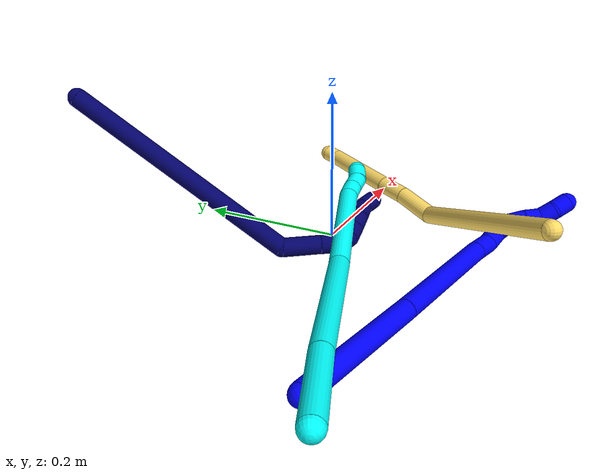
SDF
<sdf version="1.7">
 <world name="default">
  <model name="photoneo_s_sensor">
   <static>1</static>
   <pose>0 0 2 1.57079 1.57079 3.14159</pose>
   <link name="link">
    <inertial><mass>0.1</mass></inertial>
    <sensor name="sensor" type="depth">
     <update_rate>30</update_rate>
     <camera>
      <horizontal_fov>1.22</horizontal_fov>
      <image><width>1920</width><height>1200</height><format>B8G8R8</format></image>
      <clip><near>0.1</near><far>4</far></clip>
      <depth_camera><output>points</output></depth_camera>
     </camera>
     <plugin name="camera_plugin" filename="libgazebo_ros_depth_camera.so">
      <baseline>0.2</baseline>
      <alwaysOn>1</alwaysOn>
      <updateRate>0.0</updateRate>
      <cameraName>camera_ir</cameraName>
      <imageTopicName>/camera/color/image_raw</imageTopicName>
      <cameraInfoTopicName>/camera/color/camera_info</cameraInfoTopicName>
      <depthImageTopicName>/camera/depth/image_raw</depthImageTopicName>
      <depthImageCameraInfoTopicName>/camera/depth/camera_info</depthImageCameraInfoTopicName>
      <pointCloudTopicName>/camera/depth/points</pointCloudTopicName>
      <frameName>fr_optical</frameName>
      <pointCloudCutoff>0.1</pointCloudCutoff>
      <pointCloudCutoffMax>2.0</pointCloudCutoffMax>
      <distortionK1>0</distortionK1>
      <distortionK2>0</distortionK2>
      <distortionK3>0</distortionK3>
      <distortionT1>0</distortionT1>
      <distortionT2>0</distortionT2>
      <CxPrime>0</CxPrime>
      <Cx>0</Cx>
      <Cy>0</Cy>
      <focalLength>0</focalLength>
      <hackBaseline>0</hackBaseline>
     </plugin>
    </sensor>
   </link>
  </model>
  <model name="bin">
   <static>1</static>
   <link name="bottom">
    <collision name="collision-bottom">
     <pose>0 0 -0.01 0 -0 0</pose>
     <geometry><box><size>0.8 0.6 0.02</size></box></geometry>
     <surface>
      <friction><ode><mu>100</mu><mu2>100</mu2></ode></friction>
      <contact><collide_bitmask>65535</collide_bitmask></contact>
     </surface>
    </collision>
   </link>
   <link name="west_wall">
    <collision name="collision-west_wall">
     <pose>-0.41 0 0.1 0 -0 0</pose>
     <geometry><box><size>0.02 0.6 0.2</size></box></geometry>
     <surface>
      <friction><ode><mu>100</mu><mu2>100</mu2></ode></friction>
      <contact><collide_bitmask>65535</collide_bitmask></contact>
     </surface>
    </collision>
   </link>
   <link name="east_wall">
    <collision name="collision-east_wall">
     <pose>0.41 0 0.1 0 -0 0</pose>
     <geometry><box><size>0.02 0.6 0.2</size></box></geometry>
     <surface>
      <friction><ode><mu>100</mu><mu2>100</mu2></ode></friction>
      <contact><collide_bitmask>65535</collide_bitmask></contact>
     </surface>
    </collision>
   </link>
   <link name="south_wall">
    <collision name="collision-south_wall">
     <pose>0 -0.31 0.1 0 -0 0</pose>
     <geometry><box><size>0.8 0.02 0.2</size></box></geometry>
     <surface>
      <friction><ode><mu>100</mu><mu2>100</mu2></ode></friction>
      <contact><collide_bitmask>65535</collide_bitmask></contact>
     </surface>
    </collision>
   </link>
   <link name="north_wall">
    <collision name="collision-north_wall">
     <pose>0 0.31 0.1 0 -0 0</pose>
     <geometry><box><size>0.8 0.02 0.2</size></box></geometry>
     <surface>
      <friction><ode><mu>100</mu><mu2>100</mu2></ode></friction>
      <contact><collide_bitmask>65535</collide_bitmask></contact>
     </surface>
    </collision>
   </link>
  </model>
  <model name="1">
   <static>0</static>
   <link name="1">
    <collision name="collision-cylinder-e_1_1_4">
     <pose>0.058591 0.015734 -0.058097 -2.87712 0.771937 -2.50891</pose>
     <geometry><cylinder><radius>0.0125</radius><length>0.167997</length></cylinder></geometry>
     <surface>
      <friction><ode><mu>1.16</mu><mu2>1.16</mu2><slip1>0</slip1><slip2>0</slip2></ode></friction>
      <contact><ode><kp>1e+06</kp><kd>1</kd><max_vel>0</max_vel><min_depth>0.001</min_depth></ode></contact>
     </surface>
    </collision>
    <visual name="visual-cylinder-e_1_1_4">
     <pose>0.058591 0.015734 -0.058097 -2.87712 0.771937 -2.50891</pose>
     <geometry><cylinder><radius>0.0125</radius><length>0.167997</length></cylinder></geometry>
     <material><ambient>0 0 1 1</ambient></material>
    </visual>
    <collision name="collision-cylinder-e_2_4_5">
     <pose>0.180741 0.047895 -0.173407 -2.86197 0.818168 -2.51384</pose>
     <geometry><cylinder><radius>0.0125</radius><length>0.174158</length></cylinder></geometry>
     <surface>
      <friction><ode><mu>1.16</mu><mu2>1.16</mu2><slip1>0</slip1><slip2>0</slip2></ode></friction>
      <contact><ode><kp>1e+06</kp><kd>1</kd><max_vel>0</max_vel><min_depth>0.001</min_depth></ode></contact>
     </surface>
    </collision>
    <visual name="visual-cylinder-e_2_4_5">
     <pose>0.180741 0.047895 -0.173407 -2.86197 0.818168 -2.51384</pose>
     <geometry><cylinder><radius>0.0125</radius><length>0.174158</length></cylinder></geometry>
     <material><ambient>0 0 1 1</ambient></material>
    </visual>
    <collision name="collision-cylinder-e_3_5_6">
     <pose>0.256263 0.068381 -0.241979 -2.79855 0.781269 -2.34523</pose>
     <geometry><cylinder><radius>0.0125</radius><length>0.03398</length></cylinder></geometry>
     <surface>
      <friction><ode><mu>1.16</mu><mu2>1.16</mu2><slip1>0</slip1><slip2>0</slip2></ode></friction>
      <contact><ode><kp>1e+06</kp><kd>1</kd><max_vel>0</max_vel><min_depth>0.001</min_depth></ode></contact>
     </surface>
    </collision>
    <visual name="visual-cylinder-e_3_5_6">
     <pose>0.256263 0.068381 -0.241979 -2.79855 0.781269 -2.34523</pose>
     <geometry><cylinder><radius>0.0125</radius><length>0.03398</length></cylinder></geometry>
     <material><ambient>0 0 1 1</ambient></material>
    </visual>
    <collision name="collision-cylinder-e_4_6_7">
     <pose>0.273156 0.071512 -0.263373 3.0495 0.454926 2.74858</pose>
     <geometry><cylinder><radius>0.0125</radius><length>0.022435</length></cylinder></geometry>
     <surface>
      <friction><ode><mu>1.16</mu><mu2>1.16</mu2><slip1>0</slip1><slip2>0</slip2></ode></friction>
      <contact><ode><kp>1e+06</kp><kd>1</kd><max_vel>0</max_vel><min_depth>0.001</min_depth></ode></contact>
     </surface>
    </collision>
    <visual name="visual-cylinder-e_4_6_7">
     <pose>0.273156 0.071512 -0.263373 3.0495 0.454926 2.74858</pose>
     <geometry><cylinder><radius>0.0125</radius><length>0.022435</length></cylinder></geometry>
     <material><ambient>0 0 1 1</ambient></material>
    </visual>
    <collision name="collision-cylinder-e_5_7_8">
     <pose>0.277556 0.070532 -0.283701 3.13638 -0.051387 -2.93948</pose>
     <geometry><cylinder><radius>0.0125</radius><length>0.020617</length></cylinder></geometry>
     <surface>
      <friction><ode><mu>1.16</mu><mu2>1.16</mu2><slip1>0</slip1><slip2>0</slip2></ode></friction>
      <contact><ode><kp>1e+06</kp><kd>1</kd><max_vel>0</max_vel><min_depth>0.001</min_depth></ode></contact>
     </surface>
    </collision>
    <visual name="visual-cylinder-e_5_7_8">
     <pose>0.277556 0.070532 -0.283701 3.13638 -0.051387 -2.93948</pose>
     <geometry><cylinder><radius>0.0125</radius><length>0.020617</length></cylinder></geometry>
     <material><ambient>0 0 1 1</ambient></material>
    </visual>
    <collision name="collision-cylinder-e_6_8_9">
     <pose>0.276018 0.074273 -0.303468 -2.76051 -0.09849 0.500337</pose>
     <geometry><cylinder><radius>0.0125</radius><length>0.020506</length></cylinder></geometry>
     <surface>
      <friction><ode><mu>1.16</mu><mu2>1.16</mu2><slip1>0</slip1><slip2>0</slip2></ode></friction>
      <contact><ode><kp>1e+06</kp><kd>1</kd><max_vel>0</max_vel><min_depth>0.001</min_depth></ode></contact>
     </surface>
    </collision>
    <visual name="visual-cylinder-e_6_8_9">
     <pose>0.276018 0.074273 -0.303468 -2.76051 -0.09849 0.500337</pose>
     <geometry><cylinder><radius>0.0125</radius><length>0.020506</length></cylinder></geometry>
     <material><ambient>0 0 1 1</ambient></material>
    </visual>
    <collision name="collision-cylinder-e_7_9_10">
     <pose>0.273885 0.082958 -0.321637 -2.62942 -0.112232 0.42268</pose>
     <geometry><cylinder><radius>0.0125</radius><length>0.020083</length></cylinder></geometry>
     <surface>
      <friction><ode><mu>1.16</mu><mu2>1.16</mu2><slip1>0</slip1><slip2>0</slip2></ode></friction>
      <contact><ode><kp>1e+06</kp><kd>1</kd><max_vel>0</max_vel><min_depth>0.001</min_depth></ode></contact>
     </surface>
    </collision>
    <visual name="visual-cylinder-e_7_9_10">
     <pose>0.273885 0.082958 -0.321637 -2.62942 -0.112232 0.42268</pose>
     <geometry><cylinder><radius>0.0125</radius><length>0.020083</length></cylinder></geometry>
     <material><ambient>0 0 1 1</ambient></material>
    </visual>
    <collision name="collision-cylinder-e_8_10_11">
     <pose>0.271443 0.088643 -0.340262 -3.06164 -0.131517 2.04995</pose>
     <geometry><cylinder><radius>0.0125</radius><length>0.020091</length></cylinder></geometry>
     <surface>
      <friction><ode><mu>1.16</mu><mu2>1.16</mu2><slip1>0</slip1><slip2>0</slip2></ode></friction>
      <contact><ode><kp>1e+06</kp><kd>1</kd><max_vel>0</max_vel><min_depth>0.001</min_depth></ode></contact>
     </surface>
    </collision>
    <visual name="visual-cylinder-e_8_10_11">
     <pose>0.271443 0.088643 -0.340262 -3.06164 -0.131517 2.04995</pose>
     <geometry><cylinder><radius>0.0125</radius><length>0.020091</length></cylinder></geometry>
     <material><ambient>0 0 1 1</ambient></material>
    </visual>
    <collision name="collision-cylinder-e_9_11_2">
     <pose>0.271717 0.090711 -0.360047 -3.01322 0.158725 -1.78218</pose>
     <geometry><cylinder><radius>0.0125</radius><length>0.020133</length></cylinder></geometry>
     <surface>
      <friction><ode><mu>1.16</mu><mu2>1.16</mu2><slip1>0</slip1><slip2>0</slip2></ode></friction>
      <contact><ode><kp>1e+06</kp><kd>1</kd><max_vel>0</max_vel><min_depth>0.001</min_depth></ode></contact>
     </surface>
    </collision>
    <visual name="visual-cylinder-e_9_11_2">
     <pose>0.271717 0.090711 -0.360047 -3.01322 0.158725 -1.78218</pose>
     <geometry><cylinder><radius>0.0125</radius><length>0.020133</length></cylinder></geometry>
     <material><ambient>0 0 1 1</ambient></material>
    </visual>
    <collision name="collision-sphere-2">
     <pose>0.273308 0.091984 -0.369905 0 -0 0</pose>
     <geometry><sphere><radius>0.0125</radius></sphere></geometry>
     <surface>
      <friction><ode><mu>1.16</mu><mu2>1.16</mu2><slip1>0</slip1><slip2>0</slip2></ode></friction>
      <contact><ode><kp>1e+06</kp><kd>1</kd><max_vel>0</max_vel><min_depth>0.001</min_depth></ode></contact>
     </surface>
    </collision>
    <visual name="visual-sphere-2">
     <pose>0.273308 0.091984 -0.369905 0 -0 0</pose>
     <geometry><sphere><radius>0.0125</radius></sphere></geometry>
     <material><ambient>0 0 1 1</ambient></material>
    </visual>
    <collision name="collision-sphere-11">
     <pose>0.270126 0.089439 -0.350188 0 -0 0</pose>
     <geometry><sphere><radius>0.0125</radius></sphere></geometry>
     <surface>
      <friction><ode><mu>1.16</mu><mu2>1.16</mu2><slip1>0</slip1><slip2>0</slip2></ode></friction>
      <contact><ode><kp>1e+06</kp><kd>1</kd><max_vel>0</max_vel><min_depth>0.001</min_depth></ode></contact>
     </surface>
    </collision>
    <visual name="visual-sphere-11">
     <pose>0.270126 0.089439 -0.350188 0 -0 0</pose>
     <geometry><sphere><radius>0.0125</radius></sphere></geometry>
     <material><ambient>0 0 1 1</ambient></material>
    </visual>
    <collision name="collision-sphere-10">
     <pose>0.27276 0.087848 -0.330335 0 -0 0</pose>
     <geometry><sphere><radius>0.0125</radius></sphere></geometry>
     <surface>
      <friction><ode><mu>1.16</mu><mu2>1.16</mu2><slip1>0</slip1><slip2>0</slip2></ode></friction>
      <contact><ode><kp>1e+06</kp><kd>1</kd><max_vel>0</max_vel><min_depth>0.001</min_depth></ode></contact>
     </surface>
    </collision>
    <visual name="visual-sphere-10">
     <pose>0.27276 0.087848 -0.330335 0 -0 0</pose>
     <geometry><sphere><radius>0.0125</radius></sphere></geometry>
     <material><ambient>0 0 1 1</ambient></material>
    </visual>
    <collision name="collision-sphere-9">
     <pose>0.27501 0.078068 -0.312939 0 -0 0</pose>
     <geometry><sphere><radius>0.0125</radius></sphere></geometry>
     <surface>
      <friction><ode><mu>1.16</mu><mu2>1.16</mu2><slip1>0</slip1><slip2>0</slip2></ode></friction>
      <contact><ode><kp>1e+06</kp><kd>1</kd><max_vel>0</max_vel><min_depth>0.001</min_depth></ode></contact>
     </surface>
    </collision>
    <visual name="visual-sphere-9">
     <pose>0.27501 0.078068 -0.312939 0 -0 0</pose>
     <geometry><sphere><radius>0.0125</radius></sphere></geometry>
     <material><ambient>0 0 1 1</ambient></material>
    </visual>
    <collision name="collision-sphere-4">
     <pose>0.117182 0.031467 -0.116195 0 -0 0</pose>
     <geometry><sphere><radius>0.0125</radius></sphere></geometry>
     <surface>
      <friction><ode><mu>1.16</mu><mu2>1.16</mu2><slip1>0</slip1><slip2>0</slip2></ode></friction>
      <contact><ode><kp>1e+06</kp><kd>1</kd><max_vel>0</max_vel><min_depth>0.001</min_depth></ode></contact>
     </surface>
    </collision>
    <visual name="visual-sphere-4">
     <pose>0.117182 0.031467 -0.116195 0 -0 0</pose>
     <geometry><sphere><radius>0.0125</radius></sphere></geometry>
     <material><ambient>0 0 1 1</ambient></material>
    </visual>
    <collision name="collision-sphere-1">
     <geometry><sphere><radius>0.0125</radius></sphere></geometry>
     <surface>
      <friction><ode><mu>1.16</mu><mu2>1.16</mu2><slip1>0</slip1><slip2>0</slip2></ode></friction>
      <contact><ode><kp>1e+06</kp><kd>1</kd><max_vel>0</max_vel><min_depth>0.001</min_depth></ode></contact>
     </surface>
    </collision>
    <visual name="visual-sphere-1">
     <geometry><sphere><radius>0.0125</radius></sphere></geometry>
     <material><ambient>0 0 1 1</ambient></material>
    </visual>
    <collision name="collision-sphere-8">
     <pose>0.277026 0.070478 -0.293996 0 -0 0</pose>
     <geometry><sphere><radius>0.0125</radius></sphere></geometry>
     <surface>
      <friction><ode><mu>1.16</mu><mu2>1.16</mu2><slip1>0</slip1><slip2>0</slip2></ode></friction>
      <contact><ode><kp>1e+06</kp><kd>1</kd><max_vel>0</max_vel><min_depth>0.001</min_depth></ode></contact>
     </surface>
    </collision>
    <visual name="visual-sphere-8">
     <pose>0.277026 0.070478 -0.293996 0 -0 0</pose>
     <geometry><sphere><radius>0.0125</radius></sphere></geometry>
     <material><ambient>0 0 1 1</ambient></material>
    </visual>
    <collision name="collision-sphere-5">
     <pose>0.244299 0.064324 -0.230618 0 -0 0</pose>
     <geometry><sphere><radius>0.0125</radius></sphere></geometry>
     <surface>
      <friction><ode><mu>1.16</mu><mu2>1.16</mu2><slip1>0</slip1><slip2>0</slip2></ode></friction>
      <contact><ode><kp>1e+06</kp><kd>1</kd><max_vel>0</max_vel><min_depth>0.001</min_depth></ode></contact>
     </surface>
    </collision>
    <visual name="visual-sphere-5">
     <pose>0.244299 0.064324 -0.230618 0 -0 0</pose>
     <geometry><sphere><radius>0.0125</radius></sphere></geometry>
     <material><ambient>0 0 1 1</ambient></material>
    </visual>
    <collision name="collision-sphere-6">
     <pose>0.268227 0.072439 -0.253339 0 -0 0</pose>
     <geometry><sphere><radius>0.0125</radius></sphere></geometry>
     <surface>
      <friction><ode><mu>1.16</mu><mu2>1.16</mu2><slip1>0</slip1><slip2>0</slip2></ode></friction>
      <contact><ode><kp>1e+06</kp><kd>1</kd><max_vel>0</max_vel><min_depth>0.001</min_depth></ode></contact>
     </surface>
    </collision>
    <visual name="visual-sphere-6">
     <pose>0.268227 0.072439 -0.253339 0 -0 0</pose>
     <geometry><sphere><radius>0.0125</radius></sphere></geometry>
     <material><ambient>0 0 1 1</ambient></material>
    </visual>
    <collision name="collision-sphere-7">
     <pose>0.278085 0.070585 -0.273407 0 -0 0</pose>
     <geometry><sphere><radius>0.0125</radius></sphere></geometry>
     <surface>
      <friction><ode><mu>1.16</mu><mu2>1.16</mu2><slip1>0</slip1><slip2>0</slip2></ode></friction>
      <contact><ode><kp>1e+06</kp><kd>1</kd><max_vel>0</max_vel><min_depth>0.001</min_depth></ode></contact>
     </surface>
    </collision>
    <visual name="visual-sphere-7">
     <pose>0.278085 0.070585 -0.273407 0 -0 0</pose>
     <geometry><sphere><radius>0.0125</radius></sphere></geometry>
     <material><ambient>0 0 1 1</ambient></material>
    </visual>
    <inertial>
     <pose>0.167927 0.046326 -0.173416 0 -0 0</pose>
     <mass>0.5</mass>
     <inertia>
      <ixx>-0.000812</ixx>
      <ixy>0</ixy>
      <ixz>0</ixz>
      <iyy>0.000419</iyy>
      <iyz>0</iyz>
      <izz>-0.000801</izz>
     </inertia>
    </inertial>
   </link>
   <pose>-0.320886 -0.125487 0.011495 -2.18358 0.311789 0.509385</pose>
  </model>
  <model name="3">
   <static>0</static>
   <link name="3">
    <collision name="collision-cylinder-e_1_1_4">
     <pose>0.0008 -0.000142 -0.047157 3.13858 0.016962 2.79062</pose>
     <geometry><cylinder><radius>0.0125</radius><length>0.094327</length></cylinder></geometry>
     <surface>
      <friction><ode><mu>1.16</mu><mu2>1.16</mu2><slip1>0</slip1><slip2>0</slip2></ode></friction>
      <contact><ode><kp>1e+06</kp><kd>1</kd><max_vel>0</max_vel><min_depth>0.001</min_depth></ode></contact>
     </surface>
    </collision>
    <visual name="visual-cylinder-e_1_1_4">
     <pose>0.0008 -0.000142 -0.047157 3.13858 0.016962 2.79062</pose>
     <geometry><cylinder><radius>0.0125</radius><length>0.094327</length></cylinder></geometry>
     <material><ambient>0.003922 1 0.996078 1</ambient></material>
    </visual>
    <collision name="collision-cylinder-e_2_4_5">
     <pose>0.007812 -0.002548 -0.186418 3.11701 0.067324 2.44171</pose>
     <geometry><cylinder><radius>0.0125</radius><length>0.184684</length></cylinder></geometry>
     <surface>
      <friction><ode><mu>1.16</mu><mu2>1.16</mu2><slip1>0</slip1><slip2>0</slip2></ode></friction>
      <contact><ode><kp>1e+06</kp><kd>1</kd><max_vel>0</max_vel><min_depth>0.001</min_depth></ode></contact>
     </surface>
    </collision>
    <visual name="visual-cylinder-e_2_4_5">
     <pose>0.007812 -0.002548 -0.186418 3.11701 0.067324 2.44171</pose>
     <geometry><cylinder><radius>0.0125</radius><length>0.184684</length></cylinder></geometry>
     <material><ambient>0.003922 1 0.996078 1</ambient></material>
    </visual>
    <collision name="collision-cylinder-e_3_5_6">
     <pose>0.012453 0.007952 -0.356887 -2.98013 -0.019787 0.243368</pose>
     <geometry><cylinder><radius>0.0125</radius><length>0.158824</length></cylinder></geometry>
     <surface>
      <friction><ode><mu>1.16</mu><mu2>1.16</mu2><slip1>0</slip1><slip2>0</slip2></ode></friction>
      <contact><ode><kp>1e+06</kp><kd>1</kd><max_vel>0</max_vel><min_depth>0.001</min_depth></ode></contact>
     </surface>
    </collision>
    <visual name="visual-cylinder-e_3_5_6">
     <pose>0.012453 0.007952 -0.356887 -2.98013 -0.019787 0.243368</pose>
     <geometry><cylinder><radius>0.0125</radius><length>0.158824</length></cylinder></geometry>
     <material><ambient>0.003922 1 0.996078 1</ambient></material>
    </visual>
    <collision name="collision-cylinder-e_4_6_7">
     <pose>0.012366 0.024098 -0.445477 -2.82217 0.136889 -0.804699</pose>
     <geometry><cylinder><radius>0.0125</radius><length>0.021746</length></cylinder></geometry>
     <surface>
      <friction><ode><mu>1.16</mu><mu2>1.16</mu2><slip1>0</slip1><slip2>0</slip2></ode></friction>
      <contact><ode><kp>1e+06</kp><kd>1</kd><max_vel>0</max_vel><min_depth>0.001</min_depth></ode></contact>
     </surface>
    </collision>
    <visual name="visual-cylinder-e_4_6_7">
     <pose>0.012366 0.024098 -0.445477 -2.82217 0.136889 -0.804699</pose>
     <geometry><cylinder><radius>0.0125</radius><length>0.021746</length></cylinder></geometry>
     <material><ambient>0.003922 1 0.996078 1</ambient></material>
    </visual>
    <collision name="collision-cylinder-e_5_7_8">
     <pose>0.015818 0.031242 -0.464949 -2.7552 0.194783 -0.926327</pose>
     <geometry><cylinder><radius>0.0125</radius><length>0.020347</length></cylinder></geometry>
     <surface>
      <friction><ode><mu>1.16</mu><mu2>1.16</mu2><slip1>0</slip1><slip2>0</slip2></ode></friction>
      <contact><ode><kp>1e+06</kp><kd>1</kd><max_vel>0</max_vel><min_depth>0.001</min_depth></ode></contact>
     </surface>
    </collision>
    <visual name="visual-cylinder-e_5_7_8">
     <pose>0.015818 0.031242 -0.464949 -2.7552 0.194783 -0.926327</pose>
     <geometry><cylinder><radius>0.0125</radius><length>0.020347</length></cylinder></geometry>
     <material><ambient>0.003922 1 0.996078 1</ambient></material>
    </visual>
    <collision name="collision-cylinder-e_6_8_2">
     <pose>0.015756 0.03813 -0.483511 -2.81775 -0.203815 1.11867</pose>
     <geometry><cylinder><radius>0.0125</radius><length>0.020072</length></cylinder></geometry>
     <surface>
      <friction><ode><mu>1.16</mu><mu2>1.16</mu2><slip1>0</slip1><slip2>0</slip2></ode></friction>
      <contact><ode><kp>1e+06</kp><kd>1</kd><max_vel>0</max_vel><min_depth>0.001</min_depth></ode></contact>
     </surface>
    </collision>
    <visual name="visual-cylinder-e_6_8_2">
     <pose>0.015756 0.03813 -0.483511 -2.81775 -0.203815 1.11867</pose>
     <geometry><cylinder><radius>0.0125</radius><length>0.020072</length></cylinder></geometry>
     <material><ambient>0.003922 1 0.996078 1</ambient></material>
    </visual>
    <collision name="collision-sphere-2">
     <pose>0.013725 0.041258 -0.492829 0 -0 0</pose>
     <geometry><sphere><radius>0.0125</radius></sphere></geometry>
     <surface>
      <friction><ode><mu>1.16</mu><mu2>1.16</mu2><slip1>0</slip1><slip2>0</slip2></ode></friction>
      <contact><ode><kp>1e+06</kp><kd>1</kd><max_vel>0</max_vel><min_depth>0.001</min_depth></ode></contact>
     </surface>
    </collision>
    <visual name="visual-sphere-2">
     <pose>0.013725 0.041258 -0.492829 0 -0 0</pose>
     <geometry><sphere><radius>0.0125</radius></sphere></geometry>
     <material><ambient>0.003922 1 0.996078 1</ambient></material>
    </visual>
    <collision name="collision-sphere-4">
     <pose>0.0016 -0.000284 -0.094313 0 -0 0</pose>
     <geometry><sphere><radius>0.0125</radius></sphere></geometry>
     <surface>
      <friction><ode><mu>1.16</mu><mu2>1.16</mu2><slip1>0</slip1><slip2>0</slip2></ode></friction>
      <contact><ode><kp>1e+06</kp><kd>1</kd><max_vel>0</max_vel><min_depth>0.001</min_depth></ode></contact>
     </surface>
    </collision>
    <visual name="visual-sphere-4">
     <pose>0.0016 -0.000284 -0.094313 0 -0 0</pose>
     <geometry><sphere><radius>0.0125</radius></sphere></geometry>
     <material><ambient>0.003922 1 0.996078 1</ambient></material>
    </visual>
    <collision name="collision-sphere-1">
     <geometry><sphere><radius>0.0125</radius></sphere></geometry>
     <surface>
      <friction><ode><mu>1.16</mu><mu2>1.16</mu2><slip1>0</slip1><slip2>0</slip2></ode></friction>
      <contact><ode><kp>1e+06</kp><kd>1</kd><max_vel>0</max_vel><min_depth>0.001</min_depth></ode></contact>
     </surface>
    </collision>
    <visual name="visual-sphere-1">
     <geometry><sphere><radius>0.0125</radius></sphere></geometry>
     <material><ambient>0.003922 1 0.996078 1</ambient></material>
    </visual>
    <collision name="collision-sphere-8">
     <pose>0.017788 0.035003 -0.474194 0 -0 0</pose>
     <geometry><sphere><radius>0.0125</radius></sphere></geometry>
     <surface>
      <friction><ode><mu>1.16</mu><mu2>1.16</mu2><slip1>0</slip1><slip2>0</slip2></ode></friction>
      <contact><ode><kp>1e+06</kp><kd>1</kd><max_vel>0</max_vel><min_depth>0.001</min_depth></ode></contact>
     </surface>
    </collision>
    <visual name="visual-sphere-8">
     <pose>0.017788 0.035003 -0.474194 0 -0 0</pose>
     <geometry><sphere><radius>0.0125</radius></sphere></geometry>
     <material><ambient>0.003922 1 0.996078 1</ambient></material>
    </visual>
    <collision name="collision-sphere-5">
     <pose>0.014024 -0.004812 -0.278523 0 -0 0</pose>
     <geometry><sphere><radius>0.0125</radius></sphere></geometry>
     <surface>
      <friction><ode><mu>1.16</mu><mu2>1.16</mu2><slip1>0</slip1><slip2>0</slip2></ode></friction>
      <contact><ode><kp>1e+06</kp><kd>1</kd><max_vel>0</max_vel><min_depth>0.001</min_depth></ode></contact>
     </surface>
    </collision>
    <visual name="visual-sphere-5">
     <pose>0.014024 -0.004812 -0.278523 0 -0 0</pose>
     <geometry><sphere><radius>0.0125</radius></sphere></geometry>
     <material><ambient>0.003922 1 0.996078 1</ambient></material>
    </visual>
    <collision name="collision-sphere-6">
     <pose>0.010882 0.020715 -0.43525 0 -0 0</pose>
     <geometry><sphere><radius>0.0125</radius></sphere></geometry>
     <surface>
      <friction><ode><mu>1.16</mu><mu2>1.16</mu2><slip1>0</slip1><slip2>0</slip2></ode></friction>
      <contact><ode><kp>1e+06</kp><kd>1</kd><max_vel>0</max_vel><min_depth>0.001</min_depth></ode></contact>
     </surface>
    </collision>
    <visual name="visual-sphere-6">
     <pose>0.010882 0.020715 -0.43525 0 -0 0</pose>
     <geometry><sphere><radius>0.0125</radius></sphere></geometry>
     <material><ambient>0.003922 1 0.996078 1</ambient></material>
    </visual>
    <collision name="collision-sphere-7">
     <pose>0.013849 0.02748 -0.455704 0 -0 0</pose>
     <geometry><sphere><radius>0.0125</radius></sphere></geometry>
     <surface>
      <friction><ode><mu>1.16</mu><mu2>1.16</mu2><slip1>0</slip1><slip2>0</slip2></ode></friction>
      <contact><ode><kp>1e+06</kp><kd>1</kd><max_vel>0</max_vel><min_depth>0.001</min_depth></ode></contact>
     </surface>
    </collision>
    <visual name="visual-sphere-7">
     <pose>0.013849 0.02748 -0.455704 0 -0 0</pose>
     <geometry><sphere><radius>0.0125</radius></sphere></geometry>
     <material><ambient>0.003922 1 0.996078 1</ambient></material>
    </visual>
    <inertial>
     <pose>0.008806 0.005408 -0.248823 0 -0 0</pose>
     <mass>0.5</mass>
     <inertia>
      <ixx>0.000307</ixx>
      <ixy>0</ixy>
      <ixz>0</ixz>
      <iyy>0.0006</iyy>
      <iyz>0</iyz>
      <izz>-0.000112</izz>
     </inertia>
    </inertial>
   </link>
   <pose>-0.376922 -0.165225 0.037869 1.56403 0.411958 -1.16963</pose>
  </model>
  <model name="5">
   <static>0</static>
   <link name="5">
    <collision name="collision-cylinder-e_1_1_4">
     <pose>0.0814 0.094495 -0.006149 -1.63578 0.710042 -0.753482</pose>
     <geometry><cylinder><radius>0.0125</radius><length>0.249745</length></cylinder></geometry>
     <surface>
      <friction><ode><mu>1.16</mu><mu2>1.16</mu2><slip1>0</slip1><slip2>0</slip2></ode></friction>
      <contact><ode><kp>1e+06</kp><kd>1</kd><max_vel>0</max_vel><min_depth>0.001</min_depth></ode></contact>
     </surface>
    </collision>
    <visual name="visual-cylinder-e_1_1_4">
     <pose>0.0814 0.094495 -0.006149 -1.63578 0.710042 -0.753482</pose>
     <geometry><cylinder><radius>0.0125</radius><length>0.249745</length></cylinder></geometry>
     <material><ambient>1 0.858824 0.4 1</ambient></material>
    </visual>
    <collision name="collision-cylinder-e_2_4_5">
     <pose>0.167227 0.21587 -0.021285 -1.89344 0.154929 -0.214758</pose>
     <geometry><cylinder><radius>0.0125</radius><length>0.05737</length></cylinder></geometry>
     <surface>
      <friction><ode><mu>1.16</mu><mu2>1.16</mu2><slip1>0</slip1><slip2>0</slip2></ode></friction>
      <contact><ode><kp>1e+06</kp><kd>1</kd><max_vel>0</max_vel><min_depth>0.001</min_depth></ode></contact>
     </surface>
    </collision>
    <visual name="visual-cylinder-e_2_4_5">
     <pose>0.167227 0.21587 -0.021285 -1.89344 0.154929 -0.214758</pose>
     <geometry><cylinder><radius>0.0125</radius><length>0.05737</length></cylinder></geometry>
     <material><ambient>1 0.858824 0.4 1</ambient></material>
    </visual>
    <collision name="collision-cylinder-e_3_5_6">
     <pose>0.177014 0.261566 -0.037393 -1.93258 0.260412 -0.374685</pose>
     <geometry><cylinder><radius>0.0125</radius><length>0.041644</length></cylinder></geometry>
     <surface>
      <friction><ode><mu>1.16</mu><mu2>1.16</mu2><slip1>0</slip1><slip2>0</slip2></ode></friction>
      <contact><ode><kp>1e+06</kp><kd>1</kd><max_vel>0</max_vel><min_depth>0.001</min_depth></ode></contact>
     </surface>
    </collision>
    <visual name="visual-cylinder-e_3_5_6">
     <pose>0.177014 0.261566 -0.037393 -1.93258 0.260412 -0.374685</pose>
     <geometry><cylinder><radius>0.0125</radius><length>0.041644</length></cylinder></geometry>
     <material><ambient>1 0.858824 0.4 1</ambient></material>
    </visual>
    <collision name="collision-cylinder-e_4_6_7">
     <pose>0.20259 0.340218 -0.060521 -1.8322 0.315468 -0.408618</pose>
     <geometry><cylinder><radius>0.0125</radius><length>0.130307</length></cylinder></geometry>
     <surface>
      <friction><ode><mu>1.16</mu><mu2>1.16</mu2><slip1>0</slip1><slip2>0</slip2></ode></friction>
      <contact><ode><kp>1e+06</kp><kd>1</kd><max_vel>0</max_vel><min_depth>0.001</min_depth></ode></contact>
     </surface>
    </collision>
    <visual name="visual-cylinder-e_4_6_7">
     <pose>0.20259 0.340218 -0.060521 -1.8322 0.315468 -0.408618</pose>
     <geometry><cylinder><radius>0.0125</radius><length>0.130307</length></cylinder></geometry>
     <material><ambient>1 0.858824 0.4 1</ambient></material>
    </visual>
    <collision name="collision-cylinder-e_5_7_2">
     <pose>0.224869 0.409179 -0.081219 -2.0455 0.198523 -0.323446</pose>
     <geometry><cylinder><radius>0.0125</radius><length>0.020933</length></cylinder></geometry>
     <surface>
      <friction><ode><mu>1.16</mu><mu2>1.16</mu2><slip1>0</slip1><slip2>0</slip2></ode></friction>
      <contact><ode><kp>1e+06</kp><kd>1</kd><max_vel>0</max_vel><min_depth>0.001</min_depth></ode></contact>
     </surface>
    </collision>
    <visual name="visual-cylinder-e_5_7_2">
     <pose>0.224869 0.409179 -0.081219 -2.0455 0.198523 -0.323446</pose>
     <geometry><cylinder><radius>0.0125</radius><length>0.020933</length></cylinder></geometry>
     <material><ambient>1 0.858824 0.4 1</ambient></material>
    </visual>
    <collision name="collision-sphere-2">
     <pose>0.226933 0.418305 -0.085909 0 -0 0</pose>
     <geometry><sphere><radius>0.0125</radius></sphere></geometry>
     <surface>
      <friction><ode><mu>1.16</mu><mu2>1.16</mu2><slip1>0</slip1><slip2>0</slip2></ode></friction>
      <contact><ode><kp>1e+06</kp><kd>1</kd><max_vel>0</max_vel><min_depth>0.001</min_depth></ode></contact>
     </surface>
    </collision>
    <visual name="visual-sphere-2">
     <pose>0.226933 0.418305 -0.085909 0 -0 0</pose>
     <geometry><sphere><radius>0.0125</radius></sphere></geometry>
     <material><ambient>1 0.858824 0.4 1</ambient></material>
    </visual>
    <collision name="collision-sphere-7">
     <pose>0.222805 0.400052 -0.076529 0 -0 0</pose>
     <geometry><sphere><radius>0.0125</radius></sphere></geometry>
     <surface>
      <friction><ode><mu>1.16</mu><mu2>1.16</mu2><slip1>0</slip1><slip2>0</slip2></ode></friction>
      <contact><ode><kp>1e+06</kp><kd>1</kd><max_vel>0</max_vel><min_depth>0.001</min_depth></ode></contact>
     </surface>
    </collision>
    <visual name="visual-sphere-7">
     <pose>0.222805 0.400052 -0.076529 0 -0 0</pose>
     <geometry><sphere><radius>0.0125</radius></sphere></geometry>
     <material><ambient>1 0.858824 0.4 1</ambient></material>
    </visual>
    <collision name="collision-sphere-6">
     <pose>0.182376 0.280384 -0.044514 0 -0 0</pose>
     <geometry><sphere><radius>0.0125</radius></sphere></geometry>
     <surface>
      <friction><ode><mu>1.16</mu><mu2>1.16</mu2><slip1>0</slip1><slip2>0</slip2></ode></friction>
      <contact><ode><kp>1e+06</kp><kd>1</kd><max_vel>0</max_vel><min_depth>0.001</min_depth></ode></contact>
     </surface>
    </collision>
    <visual name="visual-sphere-6">
     <pose>0.182376 0.280384 -0.044514 0 -0 0</pose>
     <geometry><sphere><radius>0.0125</radius></sphere></geometry>
     <material><ambient>1 0.858824 0.4 1</ambient></material>
    </visual>
    <collision name="collision-sphere-5">
     <pose>0.171653 0.242748 -0.030271 0 -0 0</pose>
     <geometry><sphere><radius>0.0125</radius></sphere></geometry>
     <surface>
      <friction><ode><mu>1.16</mu><mu2>1.16</mu2><slip1>0</slip1><slip2>0</slip2></ode></friction>
      <contact><ode><kp>1e+06</kp><kd>1</kd><max_vel>0</max_vel><min_depth>0.001</min_depth></ode></contact>
     </surface>
    </collision>
    <visual name="visual-sphere-5">
     <pose>0.171653 0.242748 -0.030271 0 -0 0</pose>
     <geometry><sphere><radius>0.0125</radius></sphere></geometry>
     <material><ambient>1 0.858824 0.4 1</ambient></material>
    </visual>
    <collision name="collision-sphere-1">
     <geometry><sphere><radius>0.0125</radius></sphere></geometry>
     <surface>
      <friction><ode><mu>1.16</mu><mu2>1.16</mu2><slip1>0</slip1><slip2>0</slip2></ode></friction>
      <contact><ode><kp>1e+06</kp><kd>1</kd><max_vel>0</max_vel><min_depth>0.001</min_depth></ode></contact>
     </surface>
    </collision>
    <visual name="visual-sphere-1">
     <geometry><sphere><radius>0.0125</radius></sphere></geometry>
     <material><ambient>1 0.858824 0.4 1</ambient></material>
    </visual>
    <collision name="collision-sphere-4">
     <pose>0.1628 0.188991 -0.012299 0 -0 0</pose>
     <geometry><sphere><radius>0.0125</radius></sphere></geometry>
     <surface>
      <friction><ode><mu>1.16</mu><mu2>1.16</mu2><slip1>0</slip1><slip2>0</slip2></ode></friction>
      <contact><ode><kp>1e+06</kp><kd>1</kd><max_vel>0</max_vel><min_depth>0.001</min_depth></ode></contact>
     </surface>
    </collision>
    <visual name="visual-sphere-4">
     <pose>0.1628 0.188991 -0.012299 0 -0 0</pose>
     <geometry><sphere><radius>0.0125</radius></sphere></geometry>
     <material><ambient>1 0.858824 0.4 1</ambient></material>
    </visual>
    <inertial>
     <pose>0.136802 0.199551 -0.027801 0 -0 0</pose>
     <mass>0.5</mass>
     <inertia>
      <ixx>0.000175</ixx>
      <ixy>0</ixy>
      <ixz>0</ixz>
      <iyy>-0.000234</iyy>
      <iyz>0</iyz>
      <izz>-0.002112</izz>
     </inertia>
    </inertial>
   </link>
   <pose>-0.054754 -0.286814 0.090168 1.64135 1.18122 0.854657</pose>
  </model>
  <model name="7">
   <static>0</static>
   <link name="7">
    <collision name="collision-cylinder-e_1_1_4">
     <pose>0.038952 -0.153994 0.021067 1.43484 0.245553 0.214504</pose>
     <geometry><cylinder><radius>0.0125</radius><length>0.32047</length></cylinder></geometry>
     <surface>
      <friction><ode><mu>1.16</mu><mu2>1.16</mu2><slip1>0</slip1><slip2>0</slip2></ode></friction>
      <contact><ode><kp>1e+06</kp><kd>1</kd><max_vel>0</max_vel><min_depth>0.001</min_depth></ode></contact>
     </surface>
    </collision>
    <visual name="visual-cylinder-e_1_1_4">
     <pose>0.038952 -0.153994 0.021067 1.43484 0.245553 0.214504</pose>
     <geometry><cylinder><radius>0.0125</radius><length>0.32047</length></cylinder></geometry>
     <material><ambient>0.003922 0 0.403922 1</ambient></material>
    </visual>
    <collision name="collision-cylinder-e_2_4_5">
     <pose>0.066798 -0.330846 0.041227 1.61049 -0.451969 -0.46962</pose>
     <geometry><cylinder><radius>0.0125</radius><length>0.050859</length></cylinder></geometry>
     <surface>
      <friction><ode><mu>1.16</mu><mu2>1.16</mu2><slip1>0</slip1><slip2>0</slip2></ode></friction>
      <contact><ode><kp>1e+06</kp><kd>1</kd><max_vel>0</max_vel><min_depth>0.001</min_depth></ode></contact>
     </surface>
    </collision>
    <visual name="visual-cylinder-e_2_4_5">
     <pose>0.066798 -0.330846 0.041227 1.61049 -0.451969 -0.46962</pose>
     <geometry><cylinder><radius>0.0125</radius><length>0.050859</length></cylinder></geometry>
     <material><ambient>0.003922 0 0.403922 1</ambient></material>
    </visual>
    <collision name="collision-cylinder-e_3_5_6">
     <pose>0.0506 -0.36533 0.039059 1.67876 -0.410652 -0.456036</pose>
     <geometry><cylinder><radius>0.0125</radius><length>0.025509</length></cylinder></geometry>
     <surface>
      <friction><ode><mu>1.16</mu><mu2>1.16</mu2><slip1>0</slip1><slip2>0</slip2></ode></friction>
      <contact><ode><kp>1e+06</kp><kd>1</kd><max_vel>0</max_vel><min_depth>0.001</min_depth></ode></contact>
     </surface>
    </collision>
    <visual name="visual-cylinder-e_3_5_6">
     <pose>0.0506 -0.36533 0.039059 1.67876 -0.410652 -0.456036</pose>
     <geometry><cylinder><radius>0.0125</radius><length>0.025509</length></cylinder></geometry>
     <material><ambient>0.003922 0 0.403922 1</ambient></material>
    </visual>
    <collision name="collision-cylinder-e_4_6_7">
     <pose>0.03726 -0.382503 0.04182 0.943543 -0.877687 -0.470088</pose>
     <geometry><cylinder><radius>0.0125</radius><length>0.021444</length></cylinder></geometry>
     <surface>
      <friction><ode><mu>1.16</mu><mu2>1.16</mu2><slip1>0</slip1><slip2>0</slip2></ode></friction>
      <contact><ode><kp>1e+06</kp><kd>1</kd><max_vel>0</max_vel><min_depth>0.001</min_depth></ode></contact>
     </surface>
    </collision>
    <visual name="visual-cylinder-e_4_6_7">
     <pose>0.03726 -0.382503 0.04182 0.943543 -0.877687 -0.470088</pose>
     <geometry><cylinder><radius>0.0125</radius><length>0.021444</length></cylinder></geometry>
     <material><ambient>0.003922 0 0.403922 1</ambient></material>
    </visual>
    <collision name="collision-cylinder-e_5_7_8">
     <pose>0.01873 -0.389436 0.048258 0.520787 -1.30608 -0.402154</pose>
     <geometry><cylinder><radius>0.0125</radius><length>0.021307</length></cylinder></geometry>
     <surface>
      <friction><ode><mu>1.16</mu><mu2>1.16</mu2><slip1>0</slip1><slip2>0</slip2></ode></friction>
      <contact><ode><kp>1e+06</kp><kd>1</kd><max_vel>0</max_vel><min_depth>0.001</min_depth></ode></contact>
     </surface>
    </collision>
    <visual name="visual-cylinder-e_5_7_8">
     <pose>0.01873 -0.389436 0.048258 0.520787 -1.30608 -0.402154</pose>
     <geometry><cylinder><radius>0.0125</radius><length>0.021307</length></cylinder></geometry>
     <material><ambient>0.003922 0 0.403922 1</ambient></material>
    </visual>
    <collision name="collision-cylinder-e_6_8_9">
     <pose>-0.00158 -0.391875 0.05179 0.756619 -1.41916 -0.657865</pose>
     <geometry><cylinder><radius>0.0125</radius><length>0.020288</length></cylinder></geometry>
     <surface>
      <friction><ode><mu>1.16</mu><mu2>1.16</mu2><slip1>0</slip1><slip2>0</slip2></ode></friction>
      <contact><ode><kp>1e+06</kp><kd>1</kd><max_vel>0</max_vel><min_depth>0.001</min_depth></ode></contact>
     </surface>
    </collision>
    <visual name="visual-cylinder-e_6_8_9">
     <pose>-0.00158 -0.391875 0.05179 0.756619 -1.41916 -0.657865</pose>
     <geometry><cylinder><radius>0.0125</radius><length>0.020288</length></cylinder></geometry>
     <material><ambient>0.003922 0 0.403922 1</ambient></material>
    </visual>
    <collision name="collision-cylinder-e_7_9_10">
     <pose>-0.021199 -0.393859 0.055763 0.315232 -1.26697 -0.232411</pose>
     <geometry><cylinder><radius>0.0125</radius><length>0.020102</length></cylinder></geometry>
     <surface>
      <friction><ode><mu>1.16</mu><mu2>1.16</mu2><slip1>0</slip1><slip2>0</slip2></ode></friction>
      <contact><ode><kp>1e+06</kp><kd>1</kd><max_vel>0</max_vel><min_depth>0.001</min_depth></ode></contact>
     </surface>
    </collision>
    <visual name="visual-cylinder-e_7_9_10">
     <pose>-0.021199 -0.393859 0.055763 0.315232 -1.26697 -0.232411</pose>
     <geometry><cylinder><radius>0.0125</radius><length>0.020102</length></cylinder></geometry>
     <material><ambient>0.003922 0 0.403922 1</ambient></material>
    </visual>
    <collision name="collision-cylinder-e_8_10_2">
     <pose>-0.03927 -0.399821 0.06035 1.23987 -1.01078 -0.752317</pose>
     <geometry><cylinder><radius>0.0125</radius><length>0.020021</length></cylinder></geometry>
     <surface>
      <friction><ode><mu>1.16</mu><mu2>1.16</mu2><slip1>0</slip1><slip2>0</slip2></ode></friction>
      <contact><ode><kp>1e+06</kp><kd>1</kd><max_vel>0</max_vel><min_depth>0.001</min_depth></ode></contact>
     </surface>
    </collision>
    <visual name="visual-cylinder-e_8_10_2">
     <pose>-0.03927 -0.399821 0.06035 1.23987 -1.01078 -0.752317</pose>
     <geometry><cylinder><radius>0.0125</radius><length>0.020021</length></cylinder></geometry>
     <material><ambient>0.003922 0 0.403922 1</ambient></material>
    </visual>
    <collision name="collision-sphere-2">
     <pose>-0.047752 -0.40485 0.062078 0 -0 0</pose>
     <geometry><sphere><radius>0.0125</radius></sphere></geometry>
     <surface>
      <friction><ode><mu>1.16</mu><mu2>1.16</mu2><slip1>0</slip1><slip2>0</slip2></ode></friction>
      <contact><ode><kp>1e+06</kp><kd>1</kd><max_vel>0</max_vel><min_depth>0.001</min_depth></ode></contact>
     </surface>
    </collision>
    <visual name="visual-sphere-2">
     <pose>-0.047752 -0.40485 0.062078 0 -0 0</pose>
     <geometry><sphere><radius>0.0125</radius></sphere></geometry>
     <material><ambient>0.003922 0 0.403922 1</ambient></material>
    </visual>
    <collision name="collision-sphere-10">
     <pose>-0.030789 -0.394792 0.058622 0 -0 0</pose>
     <geometry><sphere><radius>0.0125</radius></sphere></geometry>
     <surface>
      <friction><ode><mu>1.16</mu><mu2>1.16</mu2><slip1>0</slip1><slip2>0</slip2></ode></friction>
      <contact><ode><kp>1e+06</kp><kd>1</kd><max_vel>0</max_vel><min_depth>0.001</min_depth></ode></contact>
     </surface>
    </collision>
    <visual name="visual-sphere-10">
     <pose>-0.030789 -0.394792 0.058622 0 -0 0</pose>
     <geometry><sphere><radius>0.0125</radius></sphere></geometry>
     <material><ambient>0.003922 0 0.403922 1</ambient></material>
    </visual>
    <collision name="collision-sphere-9">
     <pose>-0.011608 -0.392927 0.052905 0 -0 0</pose>
     <geometry><sphere><radius>0.0125</radius></sphere></geometry>
     <surface>
      <friction><ode><mu>1.16</mu><mu2>1.16</mu2><slip1>0</slip1><slip2>0</slip2></ode></friction>
      <contact><ode><kp>1e+06</kp><kd>1</kd><max_vel>0</max_vel><min_depth>0.001</min_depth></ode></contact>
     </surface>
    </collision>
    <visual name="visual-sphere-9">
     <pose>-0.011608 -0.392927 0.052905 0 -0 0</pose>
     <geometry><sphere><radius>0.0125</radius></sphere></geometry>
     <material><ambient>0.003922 0 0.403922 1</ambient></material>
    </visual>
    <collision name="collision-sphere-4">
     <pose>0.077904 -0.307988 0.042134 0 -0 0</pose>
     <geometry><sphere><radius>0.0125</radius></sphere></geometry>
     <surface>
      <friction><ode><mu>1.16</mu><mu2>1.16</mu2><slip1>0</slip1><slip2>0</slip2></ode></friction>
      <contact><ode><kp>1e+06</kp><kd>1</kd><max_vel>0</max_vel><min_depth>0.001</min_depth></ode></contact>
     </surface>
    </collision>
    <visual name="visual-sphere-4">
     <pose>0.077904 -0.307988 0.042134 0 -0 0</pose>
     <geometry><sphere><radius>0.0125</radius></sphere></geometry>
     <material><ambient>0.003922 0 0.403922 1</ambient></material>
    </visual>
    <collision name="collision-sphere-1">
     <geometry><sphere><radius>0.0125</radius></sphere></geometry>
     <surface>
      <friction><ode><mu>1.16</mu><mu2>1.16</mu2><slip1>0</slip1><slip2>0</slip2></ode></friction>
      <contact><ode><kp>1e+06</kp><kd>1</kd><max_vel>0</max_vel><min_depth>0.001</min_depth></ode></contact>
     </surface>
    </collision>
    <visual name="visual-sphere-1">
     <geometry><sphere><radius>0.0125</radius></sphere></geometry>
     <material><ambient>0.003922 0 0.403922 1</ambient></material>
    </visual>
    <collision name="collision-sphere-8">
     <pose>0.008447 -0.390823 0.050676 0 -0 0</pose>
     <geometry><sphere><radius>0.0125</radius></sphere></geometry>
     <surface>
      <friction><ode><mu>1.16</mu><mu2>1.16</mu2><slip1>0</slip1><slip2>0</slip2></ode></friction>
      <contact><ode><kp>1e+06</kp><kd>1</kd><max_vel>0</max_vel><min_depth>0.001</min_depth></ode></contact>
     </surface>
    </collision>
    <visual name="visual-sphere-8">
     <pose>0.008447 -0.390823 0.050676 0 -0 0</pose>
     <geometry><sphere><radius>0.0125</radius></sphere></geometry>
     <material><ambient>0.003922 0 0.403922 1</ambient></material>
    </visual>
    <collision name="collision-sphere-5">
     <pose>0.055692 -0.353704 0.040319 0 -0 0</pose>
     <geometry><sphere><radius>0.0125</radius></sphere></geometry>
     <surface>
      <friction><ode><mu>1.16</mu><mu2>1.16</mu2><slip1>0</slip1><slip2>0</slip2></ode></friction>
      <contact><ode><kp>1e+06</kp><kd>1</kd><max_vel>0</max_vel><min_depth>0.001</min_depth></ode></contact>
     </surface>
    </collision>
    <visual name="visual-sphere-5">
     <pose>0.055692 -0.353704 0.040319 0 -0 0</pose>
     <geometry><sphere><radius>0.0125</radius></sphere></geometry>
     <material><ambient>0.003922 0 0.403922 1</ambient></material>
    </visual>
    <collision name="collision-sphere-6">
     <pose>0.045509 -0.376956 0.037799 0 -0 0</pose>
     <geometry><sphere><radius>0.0125</radius></sphere></geometry>
     <surface>
      <friction><ode><mu>1.16</mu><mu2>1.16</mu2><slip1>0</slip1><slip2>0</slip2></ode></friction>
      <contact><ode><kp>1e+06</kp><kd>1</kd><max_vel>0</max_vel><min_depth>0.001</min_depth></ode></contact>
     </surface>
    </collision>
    <visual name="visual-sphere-6">
     <pose>0.045509 -0.376956 0.037799 0 -0 0</pose>
     <geometry><sphere><radius>0.0125</radius></sphere></geometry>
     <material><ambient>0.003922 0 0.403922 1</ambient></material>
    </visual>
    <collision name="collision-sphere-7">
     <pose>0.029012 -0.388049 0.04584 0 -0 0</pose>
     <geometry><sphere><radius>0.0125</radius></sphere></geometry>
     <surface>
      <friction><ode><mu>1.16</mu><mu2>1.16</mu2><slip1>0</slip1><slip2>0</slip2></ode></friction>
      <contact><ode><kp>1e+06</kp><kd>1</kd><max_vel>0</max_vel><min_depth>0.001</min_depth></ode></contact>
     </surface>
    </collision>
    <visual name="visual-sphere-7">
     <pose>0.029012 -0.388049 0.04584 0 -0 0</pose>
     <geometry><sphere><radius>0.0125</radius></sphere></geometry>
     <material><ambient>0.003922 0 0.403922 1</ambient></material>
    </visual>
    <inertial>
     <pose>0.034249 -0.231738 0.030299 0 -0 0</pose>
     <mass>0.5</mass>
     <inertia>
      <ixx>0.003184</ixx>
      <ixy>0</ixy>
      <ixz>0</ixz>
      <iyy>0.001045</iyy>
      <iyz>0</iyz>
      <izz>0.002012</izz>
     </inertia>
    </inertial>
   </link>
   <pose>-0.144812 0.287974 0.193793 2.71285 0.617793 -3.04559</pose>
  </model>
 </world>
</sdf>
